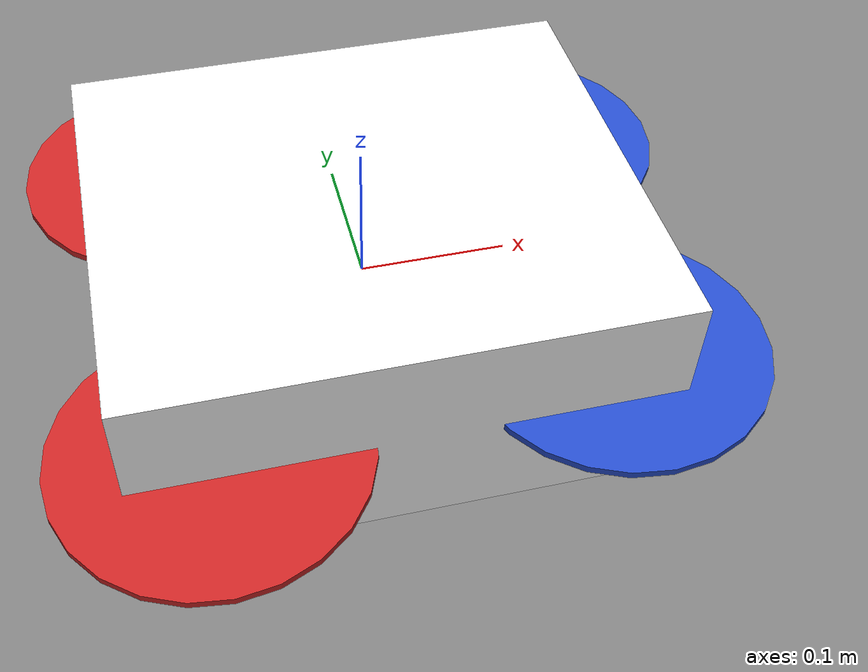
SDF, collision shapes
<?xml version="1.0" ?>
<sdf version="1.8">
  <model name="drone_cvar_racing">
    <link name="base_link">
      <enable_wind>true</enable_wind>
        <pose>0 0 0 0 -0 0</pose>
        <inertial>
        <pose>0 0 0 0 -0 0</pose>
        <mass>0.988</mass>
        <inertia>
            <ixx>0.0032384</ixx>
            <ixy>0</ixy>
            <ixz>0</ixz>
            <iyy>0.0040254</iyy>
            <iyz>0</iyz>
            <izz>0.00459895</izz>
        </inertia>
        </inertial>
      <visual name="base_link_visual">
        <pose>-0.06 0.007 0.001 0.0 0.0 0.0</pose>
        <geometry>
          <mesh>
            <uri>model://drone_cvar_racing/meshes/drone_cvar_racing.dae</uri>
          </mesh>
        </geometry>
        <material>
          <diffuse>1.0 1.0 1.0 1.0</diffuse>
          <specular>0.0 0.0 0.0 1.0</specular>
          <pbr>
            <metal/>
          </pbr>
        </material>
      </visual>
      <collision name='base_link_inertia_collision'>
        <pose>0 0 0.0 0 -0 0</pose>
        <geometry>
            <box>
            <size>0.35 0.30 0.15</size>
            </box>
        </geometry>
      </collision>
    </link>

    <!-- IMU -->
    <model name='imu'>
        <link name="internal">
            <inertial>
                <mass>0.005</mass>
                <inertia>
                    <ixx>8.33e-06</ixx>
                    <ixy>0</ixy>
                    <ixz>0</ixz>
                    <iyy>8.33e-06</iyy>
                    <iyz>0</iyz>
                    <izz>8.33e-06</izz>
                </inertia>
            </inertial>
            <sensor name='imu' type='imu'>
                <always_on>1</always_on>
                <update_rate>200</update_rate>
                <imu>
                    <angular_velocity>
                        <x>
                            <!-- [1] mid-grade MEMS (original ~ICM-20689) -->
                            <noise type='gaussian'>
                                <mean>0</mean>
                                <stddev>0.0001331581</stddev>
                                <bias_mean>0.0075</bias_mean>
                                <bias_stddev>3.25989553e-4</bias_stddev>
                                <dynamic_bias_stddev>0.00001</dynamic_bias_stddev>
                                <dynamic_bias_correlation_time>200.0</dynamic_bias_correlation_time>
                            </noise>
                            <!-- [3] perfect IMU (no noise) -->
                            <!-- [2] low-noise MEMS (active, ~VectorNav VN-100) -->
                        </x>
                        <y>
                            <!-- [1] mid-grade MEMS (original ~ICM-20689) -->
                            <noise type='gaussian'>
                                <mean>0</mean>
                                <stddev>0.0001331581</stddev>
                                <bias_mean>0.0075</bias_mean>
                                <bias_stddev>3.25989553e-4</bias_stddev>
                                <dynamic_bias_stddev>0.00001</dynamic_bias_stddev>
                                <dynamic_bias_correlation_time>200.0</dynamic_bias_correlation_time>
                            </noise>
                            <!-- [3] perfect IMU (no noise) -->
                            <!-- [2] low-noise MEMS (active, ~VectorNav VN-100) -->
                        </y>
                        <z>
                            <!-- [1] mid-grade MEMS (original ~ICM-20689) -->
                            <noise type='gaussian'>
                                <mean>0</mean>
                                <stddev>0.0001331581</stddev>
                                <bias_mean>0.0075</bias_mean>
                                <bias_stddev>3.25989553e-4</bias_stddev>
                                <dynamic_bias_stddev>0.00001</dynamic_bias_stddev>
                                <dynamic_bias_correlation_time>200.0</dynamic_bias_correlation_time>
                            </noise>
                            <!-- [3] perfect IMU (no noise) -->
                            <!-- [2] low-noise MEMS (active, ~VectorNav VN-100) -->
                        </z>
                    </angular_velocity>
                    <linear_acceleration>
                        <x>
                            <!-- [1] mid-grade MEMS (original ~ICM-20689) -->
                            <noise type='gaussian'>
                                <mean>0</mean>
                                <stddev>0.0336588782</stddev>
                                <bias_mean>0.1</bias_mean>
                                <bias_stddev>0.006676</bias_stddev>
                                <dynamic_bias_stddev>0.000375</dynamic_bias_stddev>
                                <dynamic_bias_correlation_time>150.0</dynamic_bias_correlation_time>
                            </noise>
                            <!-- [3] perfect IMU (no noise) -->
                            <!-- [2] low-noise MEMS (active, ~VectorNav VN-100) -->
                        </x>
                        <y>
                            <!-- [1] mid-grade MEMS (original ~ICM-20689) -->
                            <noise type='gaussian'>
                                <mean>0</mean>
                                <stddev>0.0336588782</stddev>
                                <bias_mean>0.1</bias_mean>
                                <bias_stddev>0.006676</bias_stddev>
                                <dynamic_bias_stddev>0.000375</dynamic_bias_stddev>
                                <dynamic_bias_correlation_time>150.0</dynamic_bias_correlation_time>
                            </noise>
                            <!-- [3] perfect IMU (no noise) -->
                            <!-- [2] low-noise MEMS (active, ~VectorNav VN-100) -->
                        </y>
                        <z>
                            <!-- [1] mid-grade MEMS (original ~ICM-20689) -->
                            <noise type='gaussian'>
                                <mean>0</mean>
                                <stddev>0.0336588782</stddev>
                                <bias_mean>0.1</bias_mean>
                                <bias_stddev>0.006676</bias_stddev>
                                <dynamic_bias_stddev>0.000375</dynamic_bias_stddev>
                                <dynamic_bias_correlation_time>150.0</dynamic_bias_correlation_time>
                            </noise>
                            <!-- [3] perfect IMU (no noise) -->
                            <!-- [2] low-noise MEMS (active, ~VectorNav VN-100) -->
                        </z>
                    </linear_acceleration>
                </imu>
            </sensor>
        </link>
    </model>

    <joint name="imu_joint" type="fixed">
        <parent>base_link</parent>
        <child>imu</child>
    </joint>

    <link name='rotor_0'>
        <pose>0.143513952 -0.104268989 0.0 0 -0 0</pose>
        <inertial>
        <pose>0 0 0 0 -0 0</pose>
        <mass>0.005</mass>
        <inertia>
            <ixx>9.75e-07</ixx>
            <ixy>0</ixy>
            <ixz>0</ixz>
            <iyy>4.17041e-05</iyy>
            <iyz>0</iyz>
            <izz>4.26041e-05</izz>
        </inertia>
        </inertial>
        <collision name='rotor_0_collision'>
        <pose>0 0 0 0 -0 0</pose>
        <geometry>
            <cylinder>
            <length>0.005</length>
            <radius>0.1</radius>
            </cylinder>
        </geometry>
        <surface>
            <contact>
            <ode/>
            </contact>
            <friction>
            <ode/>
            </friction>
        </surface>
        </collision>
        <visual name='rotor_0_visual'>
        <pose>0 0 0 0 -0 0</pose>
        <geometry>
            <mesh>
            <scale>0.1 0.1 0.1</scale>
            <uri>model://drone_cvar_racing/meshes/propeller_ccw.dae</uri>
            </mesh>
        </geometry>
        <material>
            <diffuse>0 0 1 1</diffuse>
            <script>
            <name>Gazebo/Blue</name>
            <uri>file://media/materials/scripts/gazebo.material</uri>
            </script>
        </material>
        <cast_shadows>0</cast_shadows>
        </visual>
        <gravity>1</gravity>
        <velocity_decay/>
    </link>
    <joint name='rotor_0_joint' type='revolute'>
        <child>rotor_0</child>
        <parent>base_link</parent>
        <axis>
        <xyz expressed_in='__model__'>0 0 1</xyz>
        <limit>
            <lower>-1e+16</lower>
            <upper>1e+16</upper>
        </limit>
        <dynamics>
            <spring_reference>0</spring_reference>
            <spring_stiffness>0</spring_stiffness>
        </dynamics>
        </axis>
    </joint>
    <link name='rotor_1'>
        <pose>-0.120981735 0.129737027 0.0 0 -0 0</pose>
        <inertial>
        <pose>0 0 0 0 -0 0</pose>
        <mass>0.005</mass>
        <inertia>
            <ixx>9.75e-07</ixx>
            <ixy>0</ixy>
            <ixz>0</ixz>
            <iyy>4.17041e-05</iyy>
            <iyz>0</iyz>
            <izz>4.26041e-05</izz>
        </inertia>
        </inertial>
        <collision name='rotor_1_collision'>
        <pose>0 0 0 0 -0 0</pose>
        <geometry>
            <cylinder>
            <length>0.005</length>
            <radius>0.1</radius>
            </cylinder>
        </geometry>
        <surface>
            <contact>
            <ode/>
            </contact>
            <friction>
            <ode/>
            </friction>
        </surface>
        </collision>
        <visual name='rotor_1_visual'>
        <pose>0 0 0 0 -0 0</pose>
        <geometry>
            <mesh>
            <scale>0.1 0.1 0.1</scale>
            <uri>model://drone_cvar_racing/meshes/propeller_ccw.dae</uri>
            </mesh>
        </geometry>
        <material>
            <diffuse>1 0 0 1</diffuse>
            <script>
            <name>Gazebo/Red</name>
            <uri>file://media/materials/scripts/gazebo.material</uri>
            </script>
        </material>
        <cast_shadows>0</cast_shadows>
        </visual>
        <gravity>1</gravity>
        <velocity_decay/>
    </link>
    <joint name='rotor_1_joint' type='revolute'>
        <child>rotor_1</child>
        <parent>base_link</parent>
        <axis>
        <xyz expressed_in='__model__'>0 0 1</xyz>
        <limit>
            <lower>-1e+16</lower>
            <upper>1e+16</upper>
        </limit>
        <dynamics>
            <spring_reference>0</spring_reference>
            <spring_stiffness>0</spring_stiffness>
        </dynamics>
        </axis>
    </joint>
    <link name='rotor_2'>
        <pose>0.143513952 0.104268989 0.0 0 -0 0</pose>
        <inertial>
        <pose>0 0 0 0 -0 0</pose>
        <mass>0.005</mass>
        <inertia>
            <ixx>9.75e-07</ixx>
            <ixy>0</ixy>
            <ixz>0</ixz>
            <iyy>4.17041e-05</iyy>
            <iyz>0</iyz>
            <izz>4.26041e-05</izz>
        </inertia>
        </inertial>
        <collision name='rotor_2_collision'>
        <pose>0 0 0 0 -0 0</pose>
        <geometry>
            <cylinder>
            <length>0.005</length>
            <radius>0.1</radius>
            </cylinder>
        </geometry>
        <surface>
            <contact>
            <ode/>
            </contact>
            <friction>
            <ode/>
            </friction>
        </surface>
        </collision>
        <visual name='rotor_2_visual'>
        <pose>0 0 0 0 -0 0</pose>
        <geometry>
            <mesh>
            <scale>0.1 0.1 0.1</scale>
            <uri>model://drone_cvar_racing/meshes/propeller_cw.dae</uri>
            </mesh>
        </geometry>
        <material>
            <diffuse>0 0 1 1</diffuse>
            <script>
            <name>Gazebo/Blue</name>
            <uri>file://media/materials/scripts/gazebo.material</uri>
            </script>
        </material>
        <cast_shadows>0</cast_shadows>
        </visual>
        <gravity>1</gravity>
        <velocity_decay/>
    </link>
    <joint name='rotor_2_joint' type='revolute'>
        <child>rotor_2</child>
        <parent>base_link</parent>
        <axis>
        <xyz expressed_in='__model__'>0 0 1</xyz>
        <limit>
            <lower>-1e+16</lower>
            <upper>1e+16</upper>
        </limit>
        <dynamics>
            <spring_reference>0</spring_reference>
            <spring_stiffness>0</spring_stiffness>
        </dynamics>
        </axis>
    </joint>
    <link name='rotor_3'>
        <pose>-0.120981735 -0.129737027 0.0 0 -0 0</pose>
        <inertial>
        <pose>0 0 0 0 -0 0</pose>
        <mass>0.005</mass>
        <inertia>
            <ixx>9.75e-07</ixx>
            <ixy>0</ixy>
            <ixz>0</ixz>
            <iyy>4.17041e-05</iyy>
            <iyz>0</iyz>
            <izz>4.26041e-05</izz>
        </inertia>
        </inertial>
        <collision name='rotor_3_collision'>
        <pose>0 0 0 0 -0 0</pose>
        <geometry>
            <cylinder>
            <length>0.005</length>
            <radius>0.1</radius>
            </cylinder>
        </geometry>
        <surface>
            <contact>
            <ode/>
            </contact>
            <friction>
            <ode/>
            </friction>
        </surface>
        </collision>
        <visual name='rotor_3_visual'>
        <pose>0 0 0 0 -0 0</pose>
        <geometry>
            <mesh>
            <scale>0.1 0.1 0.1</scale>
            <uri>model://drone_cvar_racing/meshes/propeller_cw.dae</uri>
            </mesh>
        </geometry>
        <material>
            <diffuse>1 0 0 1</diffuse>
            <script>
            <name>Gazebo/Red</name>
            <uri>file://media/materials/scripts/gazebo.material</uri>
            </script>
        </material>
        <cast_shadows>0</cast_shadows>
        </visual>
        <gravity>1</gravity>
        <velocity_decay/>
    </link>
    <joint name='rotor_3_joint' type='revolute'>
        <child>rotor_3</child>
        <parent>base_link</parent>
        <axis>
        <xyz expressed_in='__model__'>0 0 1</xyz>
        <limit>
            <lower>-1e+16</lower>
            <upper>1e+16</upper>
        </limit>
        <dynamics>
            <spring_reference>0</spring_reference>
            <spring_stiffness>0</spring_stiffness>
        </dynamics>
        </axis>
    </joint>

  </model>
</sdf>
